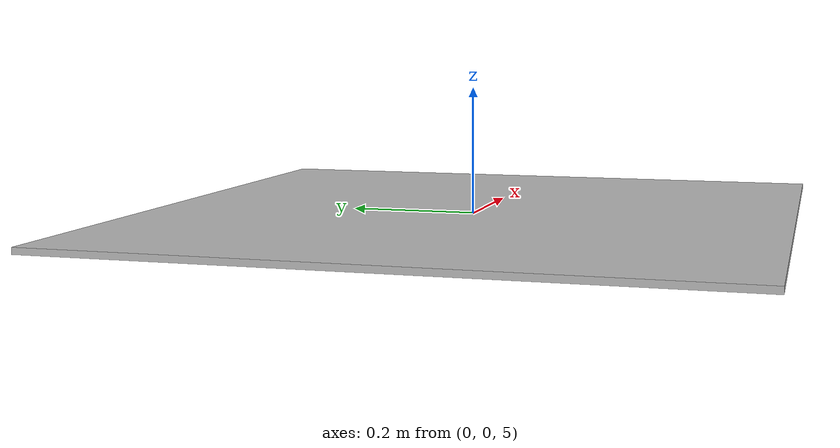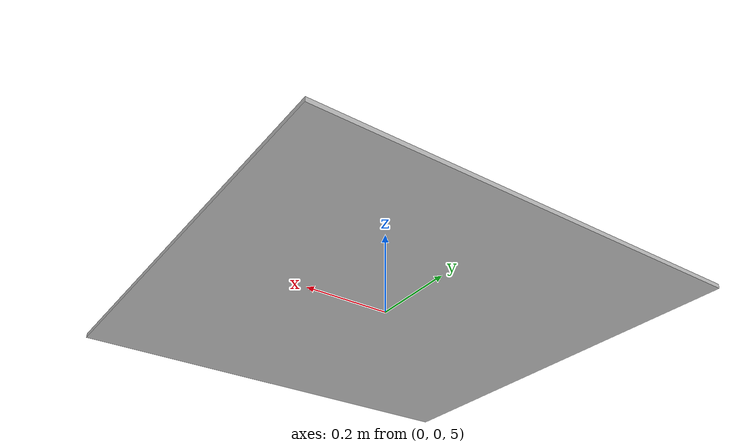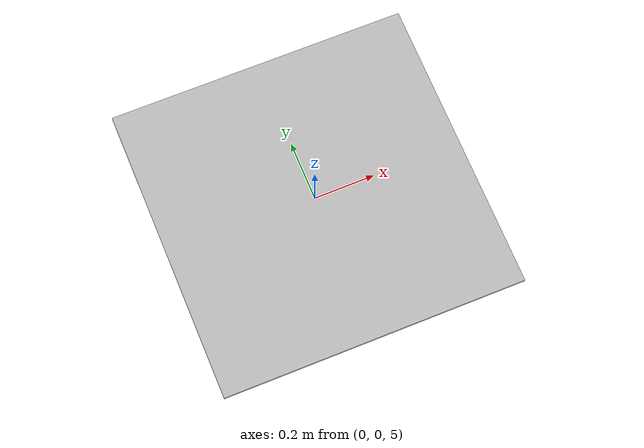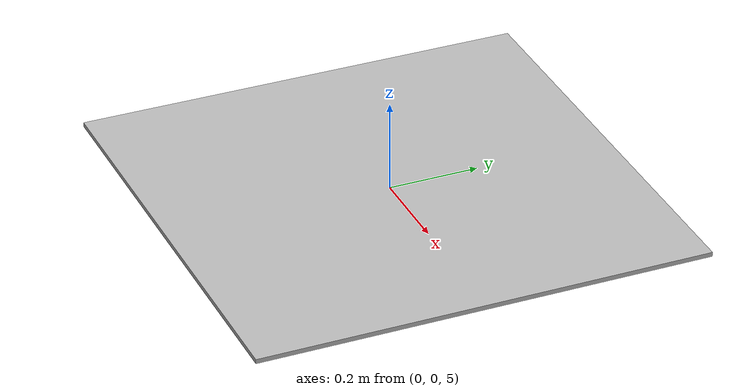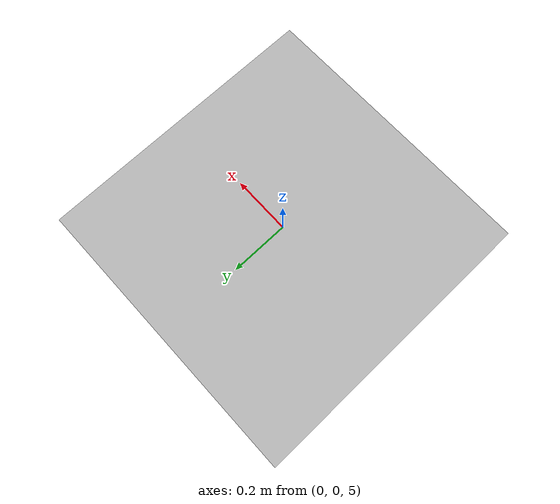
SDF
<?xml version="1.0" ?>
<sdf version="1.5">
  <model name="image_marker">
    <link name="link">
      <pose>0 0 5 0 0 0</pose>
      <inertial>
        <mass>0.390</mass>
        <inertia>
          <ixx>0.00058</ixx>
          <ixy>0</ixy>
          <ixz>0</ixz>
          <iyy>0.00058</iyy>
          <iyz>0</iyz>
          <izz>0.00019</izz>
        </inertia>
      </inertial>
      <collision name="collision">
        <geometry>
          <box>
		<size>1 1 0.01</size>
          </box>
        </geometry>
      </collision>
      <visual name="visual">
        <geometry>
          <box>
		<size>1 1 0.01</size>
          </box>
        </geometry>
        <material>
          <script>
            <uri>model://image_marker/materials/scripts</uri>
            <uri>model://image_marker/materials/textures</uri>
            <name>Image_Marker/Diffuse</name>
          </script>
        </material>
      </visual>
      <gravity>0</gravity>
    </link>
  </model>
	<gazebo>
           <static>true</static>
	   <gravity>0</gravity>
	   <turnGravityOff>true</turnGravityOff>
	</gazebo>
</sdf>
